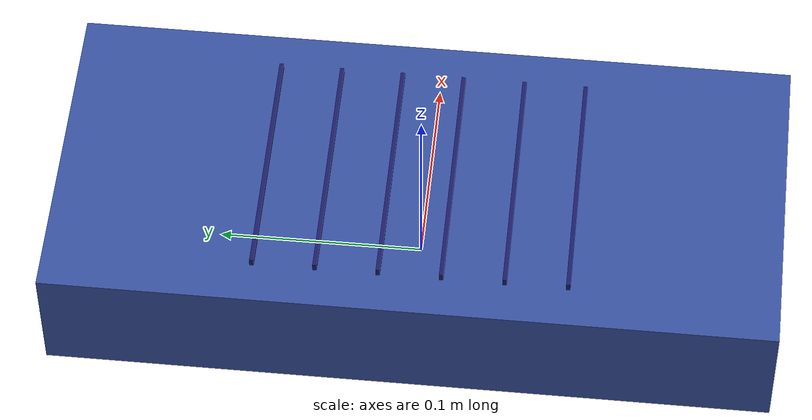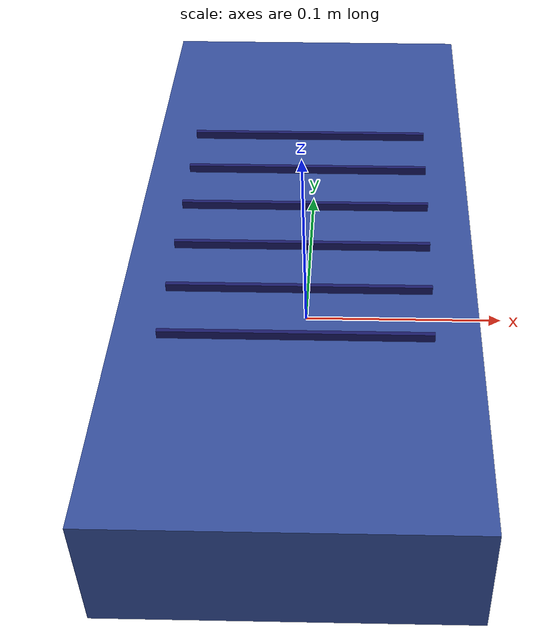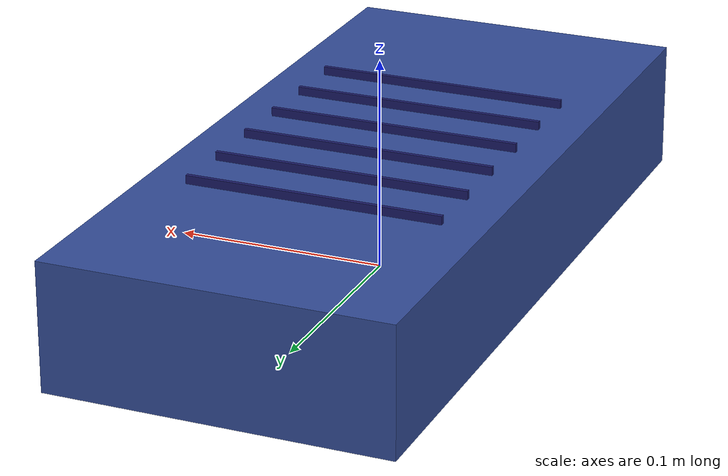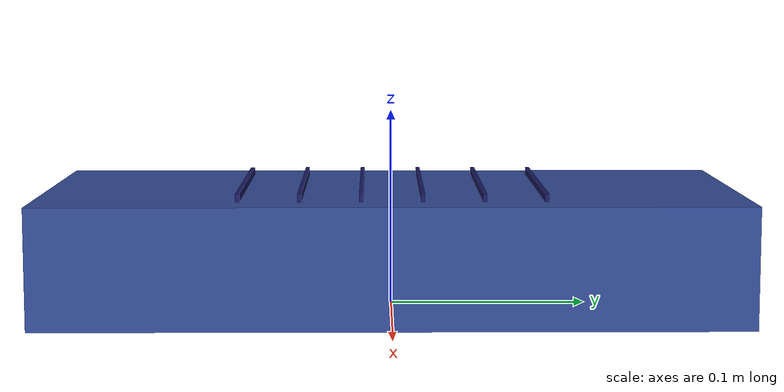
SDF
<?xml version="1.0"?>
<sdf version="1.6">
  <model name="cassette">
    <static>true</static>

    <!-- Main body -->
    <link name="cassette_body">
      <pose>0 0 0.030 0 0 0</pose>
      <visual name="body_visual">
        <geometry>
          <box><size>0.160 0.350 0.060</size></box>
        </geometry>
        <material>
          <ambient>0.2 0.3 0.6 1.0</ambient>
          <diffuse>0.2 0.3 0.6 1.0</diffuse>
          <specular>0.1 0.1 0.2 0.5</specular>
        </material>
      </visual>
      <collision name="body_collision">
        <geometry>
          <box><size>0.160 0.350 0.060</size></box>
        </geometry>
      </collision>
    </link>

    <!-- Slot ledge dividers (5 slots × 4 dividers) — simplified as thin boxes -->
    <!-- Slot A1: y = -0.060 -->
    <link name="divider_a1_top">
      <pose>0 -0.075 0.062 0 0 0</pose>
      <visual name="vis"><geometry><box><size>0.120 0.002 0.004</size></box></geometry>
        <material><ambient>0.1 0.1 0.4 1</ambient></material></visual>
    </link>
    <!-- Slot A2: y = -0.030 -->
    <link name="divider_a2_top">
      <pose>0 -0.045 0.062 0 0 0</pose>
      <visual name="vis"><geometry><box><size>0.120 0.002 0.004</size></box></geometry>
        <material><ambient>0.1 0.1 0.4 1</ambient></material></visual>
    </link>
    <!-- Slot A3: y = 0.000 -->
    <link name="divider_a3_top">
      <pose>0 -0.015 0.062 0 0 0</pose>
      <visual name="vis"><geometry><box><size>0.120 0.002 0.004</size></box></geometry>
        <material><ambient>0.1 0.1 0.4 1</ambient></material></visual>
    </link>
    <!-- Slot A4: y = +0.030 -->
    <link name="divider_a4_top">
      <pose>0 0.015 0.062 0 0 0</pose>
      <visual name="vis"><geometry><box><size>0.120 0.002 0.004</size></box></geometry>
        <material><ambient>0.1 0.1 0.4 1</ambient></material></visual>
    </link>
    <!-- Slot A5: y = +0.060 -->
    <link name="divider_a5_top">
      <pose>0 0.045 0.062 0 0 0</pose>
      <visual name="vis"><geometry><box><size>0.120 0.002 0.004</size></box></geometry>
        <material><ambient>0.1 0.1 0.4 1</ambient></material></visual>
    </link>
    <link name="divider_bottom">
      <pose>0 0.075 0.062 0 0 0</pose>
      <visual name="vis"><geometry><box><size>0.120 0.002 0.004</size></box></geometry>
        <material><ambient>0.1 0.1 0.4 1</ambient></material></visual>
    </link>

  </model>
</sdf>
